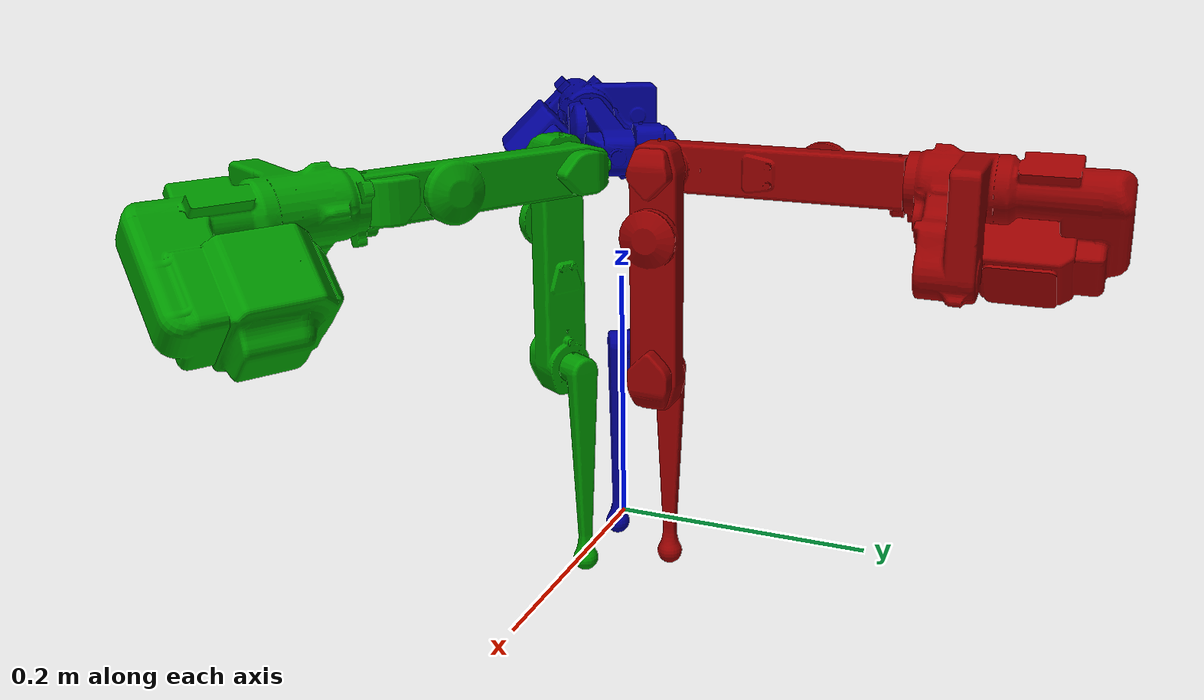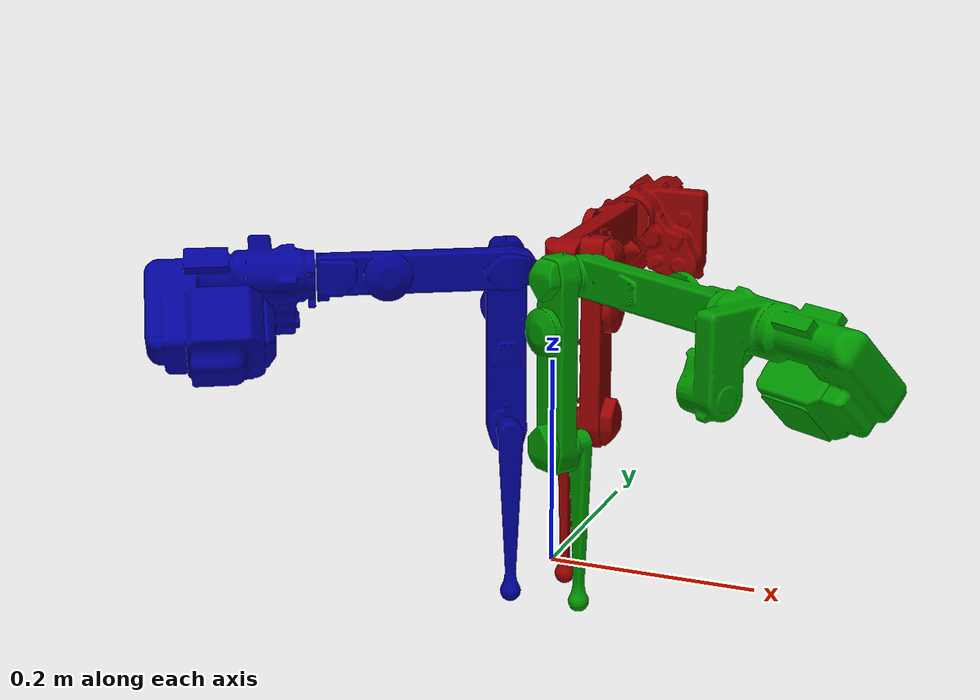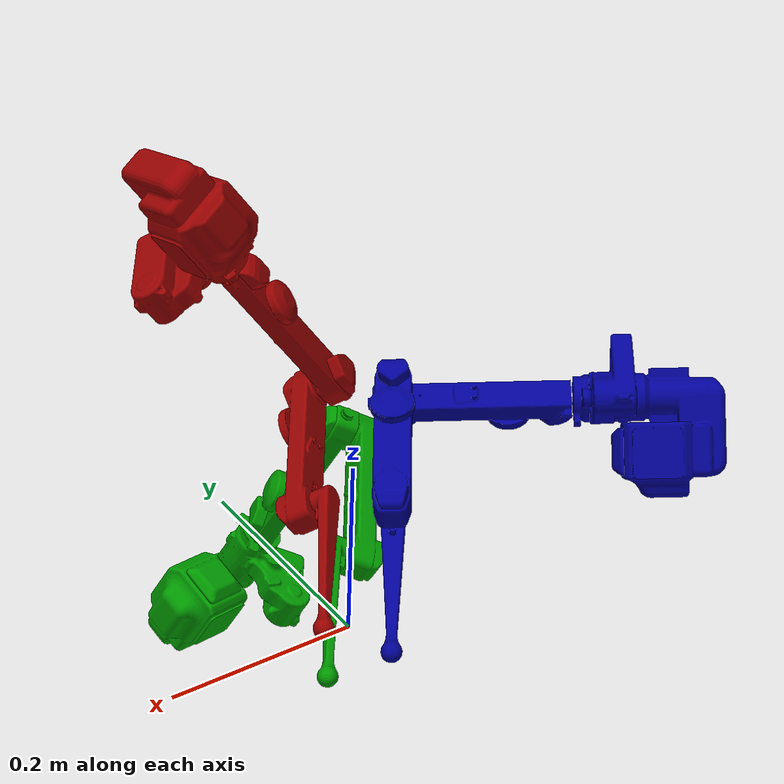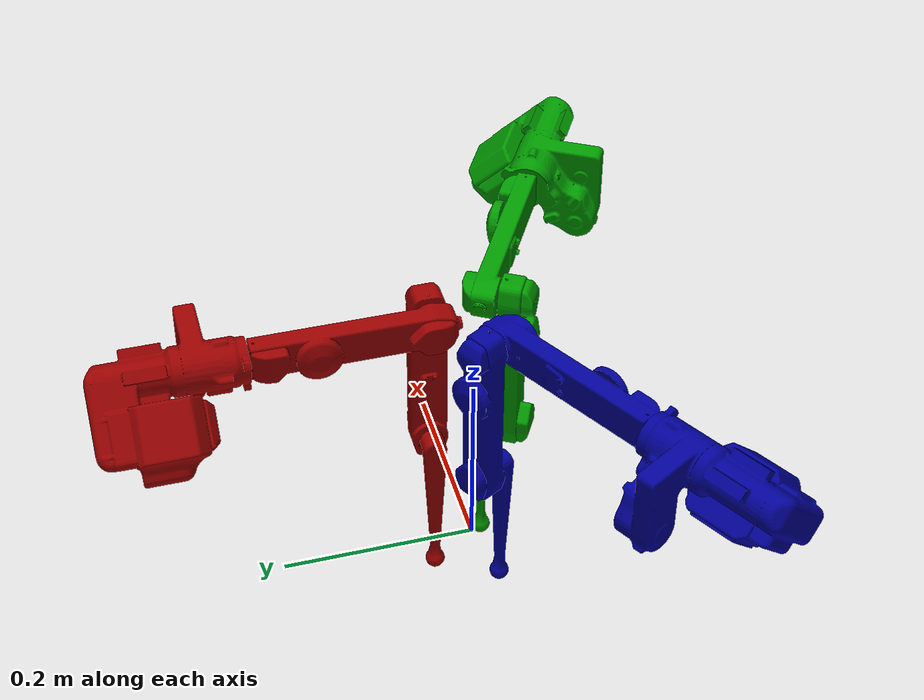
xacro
<?xml version="1.0" ?>
<robot name="finger_with_stage"
    xmlns:xacro="https://ei.is.tuebingen.mpg.de/xacro">

    <xacro:include filename="finger_macro.urdf.xacro" />
    <xacro:include filename="macros.xacro" />

    <!-- Define the global base_link and place all other objects relative to it. -->
    <link name="base_link">
        <!-- add inertial to suppress warning -->
        <xacro:add_inertia
            length_x="0.005"
            length_y="0.005"
            length_z="0.005"
            mass="1"
            com="0 0 0"/>
    </link>

    <!-- Define the upper holder -->
    <link name="upper_holder_link">
        <!-- add inertial to suppress warning -->
        <xacro:add_inertia
            length_x="0.005"
            length_y="0.005"
            length_z="0.005"
            mass="1"
            com="0 0 0"/>
    </link>
    <joint name="base_to_upper_holder_joint" type="fixed">
        <parent link="base_link"/>
        <child link="upper_holder_link"/>
        <origin xyz="0 0 0.29"/>
    </joint>

    <material name="finger_0_material">
        <color rgba="0.6 0.0 0.0 1.0" />
    </material>
    <material name="finger_120_material">
        <color rgba="0.0 0.6 0.0 1.0" />
    </material>
    <material name="finger_240_material">
        <color rgba="0.0 0.0 0.6 1.0" />
    </material>

    <!-- Define the three fingers and place them relative to the upper holder -->
    <xacro:finger suffix="_0" material="finger_0_material" />
    <xacro:finger suffix="_120" material="finger_120_material" />
    <xacro:finger suffix="_240" material="finger_240_material" />

    <xacro:property name="offset" value="0.04"/> <!-- upper_holder to finger offset -->
    <xacro:property name="angle_0" value="${radians(0)}"/>
    <xacro:property name="angle_120" value="${radians(120)}"/>
    <xacro:property name="angle_240" value="${radians(240)}"/>

    <joint name="holder_to_finger_0" type="fixed">
        <parent link="upper_holder_link"/>
        <child link="finger_base_link_0"/>
        <origin xyz="${offset * sin(angle_0)} ${offset * cos(angle_0)} 0" rpy="0 0 0"/>
    </joint>

    <joint name="holder_to_finger_120" type="fixed">
        <parent link="upper_holder_link"/>
        <child link="finger_base_link_120"/>
        <origin xyz="${offset * sin(angle_120)} ${offset * cos(angle_120)} 0" rpy="0 0 -${angle_120}"/>
    </joint>

    <joint name="holder_to_finger_240" type="fixed">
        <parent link="upper_holder_link"/>
        <child link="finger_base_link_240"/>
        <origin xyz="${offset * sin(angle_240)} ${offset * cos(angle_240)} 0" rpy="0 0 -${angle_240}"/>
    </joint>

</robot>

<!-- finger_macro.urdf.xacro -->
<robot xmlns:xacro="https://ei.is.tuebingen.mpg.de/xacro">

    <xacro:include filename="macros.xacro" />

    <!-- Meshes -->
    <xacro:property name="mesh_dir" value="package://robot_properties_fingers/meshes"/>

    <xacro:property name="upper_base_mesh" value="${mesh_dir}/SIM__BL-Finger_Base.stl"/>
    <xacro:property name="base_holder_mesh" value="${mesh_dir}/BL_Finger_Holder_SIM.stl"/>
    <xacro:property name="upper_link_mesh" value="${mesh_dir}/SIM__BL-Finger_Proximal.stl"/>
    <xacro:property name="middle_link_mesh" value="${mesh_dir}/SIM__BL-Finger_Intermediate.stl"/>
    <!-- With the round tip the lower link is closer to the one of the single finger.
         TODO: set a proper mesh matching the actual link of the TriFinger. -->
    <xacro:property name="lower_link_mesh" value="${mesh_dir}/SIM_BL_FINGER_TIP_LINK.stl"/>
    <xacro:property name="tip_padding_mesh" value="${mesh_dir}/finger_padding.stl"/>

    <!-- Distance from outer edge of the link to the joint center -->
    <xacro:property name="upper_joint_center_offset" value="0.02695" />
    <xacro:property name="upper_link_length" value="0.179" />
    <xacro:property name="middle_to_lower_joint_distance" value="0.16" />
    <xacro:property name="lower_joint_to_tip_distance" value="0.16" />
    <xacro:property name="mesh_x_offset" value="0.014" />
    <xacro:property name="centre_offset" value="0.014" />
    <xacro:property name="lower_link_mesh_scale" value="1" />
    <xacro:property name="tip_padding" value="0" /> <!-- if this flag is set to 1 (True), finger padding is added at the finger tips -->
    <xacro:property name="base_holder" value="0" /> <!-- if this flag is set to 1 (True), an upper base_holder is added -->
    <xacro:property name="tip_mass" value="0.02" />

    <xacro:macro name="finger" params="material suffix:=''">

        <!-- In case of single finger (i.e. when no suffix is passed), we change the default values of the following variables. -->
        <xacro:if value="${suffix == ''}">
            <xacro:property name="lower_link_mesh" value="${mesh_dir}/SIM_BL_FINGER_TIP_LINK.stl"/> <!-- lower_link_mesh for single finger -->
            <xacro:property name="lower_link_mesh_scale" value="1" /> <!-- not changing the scale here. Therefore, keeping the value to 1 (original scale) -->
            <xacro:property name="tip_padding" value="1" />
            <xacro:property name="base_holder" value="1" />
            <xacro:property name="tip_mass" value="0.002" />
        </xacro:if>

        <!--
        Fixed links for the finger base (parts where the upper link is mounted).
        -->
        <link name="finger_base_link${suffix}">
            <xacro:add_geometry
                rpy="0 0 0"
                xyz="0 ${upper_link_length} 0"
                mesh_file="${upper_base_mesh}"
                material="${material}" />
            <xacro:add_inertia
                length_x="0.05"
                length_y="0.05"
                length_z="0.05"
                mass="1"
                com="0 0 0"/>
        </link>
        <xacro:if value="${base_holder == 1}"> <!-- base_holder is added in case of single finger -->
            <link name="finger_upper_holder_link${suffix}">
                <xacro:add_geometry
                    rpy="0 0 0"
                    xyz="0 0 0"
                    mesh_file="${base_holder_mesh}"
                    material="${material}" />

                <!--
                  for some reason this link needs to have some inertia defined,
                  otherwise the model won't show up in gazebo
                -->

                <xacro:add_inertia
                    length_x="0.05"
                    length_y="0.05"
                    length_z="0.05"
                    mass="0.5"
                    com="0 0 0"/>
            </link>
            <joint name="finger_base_to_holder${suffix}" type="fixed">
                <parent link="finger_base_link${suffix}"/>
                <child link="finger_upper_holder_link${suffix}"/>
                <origin xyz="0 -${upper_joint_center_offset} 0" rpy="0 0 0" />
            </joint>
        </xacro:if>

        <!-- The movable links (upper, middle and lower) of the finger. -->

        <!-- TODO inertia parameters don't look correct, they cant be same for upper and middle! -->

        <link name="finger_upper_link${suffix}">
            <xacro:add_geometry
                rpy="0 0 0"
                xyz="0 -${upper_joint_center_offset} 0"
                mesh_file="${upper_link_mesh}"
                material="${material}" />
            <xacro:add_inertia
                length_x="0.04"
                length_y="0.14"
                length_z="0.04"
                mass="0.2"
                com="0 0.06 0"/>
        </link>

        <link name="finger_middle_link${suffix}">
            <xacro:add_geometry
                rpy="${pi/2} 0 0"
                xyz="${mesh_x_offset} 0 0"
                mesh_file="${middle_link_mesh}"
                material="${material}" />
            <xacro:add_inertia
                length_x="0.04"
                length_y="0.04"
                length_z="0.14"
                mass="0.2"
                com="${2 * mesh_x_offset} 0 -0.08"/>
        </link>

        <link name="finger_lower_link${suffix}">
            <xacro:add_geometry
                rpy="${pi/2} 0 0"
                xyz="${mesh_x_offset} 0 0"
                mesh_file="${lower_link_mesh}"
                mesh_scale="${lower_link_mesh_scale}"
                material="${material}" />
            <xacro:if value="${tip_padding == 1}"> <!-- tip_padding is added in case of single finger -->
                <xacro:add_geometry
                    rpy="0 0 0"
                    xyz="0 0 -${lower_joint_to_tip_distance}"
                    mesh_file="${tip_padding_mesh}"
                    material="${material}" />
            </xacro:if>
            <xacro:add_inertia
                length_x="0.02"
                length_y="0.02"
                length_z="0.14"
                mass="0.01"
                com="0 0 -0.06"/>
        </link>

        <!-- fixed link for finger tip -->
        <link name="finger_tip_link${suffix}">
            <xacro:add_inertia
                length_x="0.01"
                length_y="0.01"
                length_z="0.01"
                com="0 0 0"
                mass="${tip_mass}"/>
        </link>
        <joint name="finger_lower_to_tip_joint${suffix}" type="fixed">
            <parent link="finger_lower_link${suffix}"/>
            <child link="finger_tip_link${suffix}"/>
            <origin xyz="0 0 -${lower_joint_to_tip_distance}"/>
        </joint>

        <!-- kinematics -->

        <joint name="finger_base_to_upper_joint${suffix}" type="revolute">
            <parent link="finger_base_link${suffix}"/>
            <child link="finger_upper_link${suffix}"/>
            <limit effort="1000" lower="-${pi/2}" upper="${pi/2}" velocity="1000"/>
            <axis xyz="0 1 0"/>
            <origin rpy="0 0 0" xyz="0 0 0"/>
        </joint>

        <joint name="finger_upper_to_middle_joint${suffix}" type="revolute">
            <parent link="finger_upper_link${suffix}"/>
            <child link="finger_middle_link${suffix}"/>
            <limit effort="1000" lower="${radians(-77.5)}" upper="${radians(257.5)}" velocity="1000"/>
            <axis xyz="-1 0 0"/>
            <origin rpy="0 0 0" xyz="0 0 0"/>
        </joint>

        <joint name="finger_middle_to_lower_joint${suffix}" type="revolute">
            <parent link="finger_middle_link${suffix}"/>
            <child link="finger_lower_link${suffix}"/>
            <limit effort="1000" lower="${radians(-172)}" upper="${radians(172)}" velocity="1000"/>
            <axis xyz="1 0 0"/>
            <origin rpy="0 0 0" xyz="0 0 -${middle_to_lower_joint_distance}"/>
        </joint>

    </xacro:macro>
</robot>

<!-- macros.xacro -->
<!-- Some macros for convenience -->
<robot xmlns:xacro="https://ei.is.tuebingen.mpg.de/xacro">

    <xacro:macro name="add_geometry"
        params="rpy xyz mesh_file material mesh_scale:='1'">
        <visual>
            <origin rpy="${rpy}" xyz="${xyz}"/>
            <geometry>
                <mesh scale="${mesh_scale} ${mesh_scale} ${mesh_scale}" filename="${mesh_file}"/>
            </geometry>
            <material name="${material}" />
        </visual>
        <collision>
            <origin rpy="${rpy}" xyz="${xyz}"/>
            <geometry>
                <mesh scale="${mesh_scale} ${mesh_scale} ${mesh_scale}" filename="${mesh_file}"/>
            </geometry>
        </collision>
    </xacro:macro>

    <xacro:macro name="add_inertia" params="length_x length_y length_z mass com">
        <inertial>
            <origin rpy="0 0 0" xyz="${com}"/>
            <mass value="${mass}"/>
            <inertia
                    ixx="${1./12. * mass * (length_y*length_y + length_z*length_z)}"
                    iyy="${1./12. * mass * (length_x*length_x + length_z*length_z)}"
                    izz="${1./12. * mass * (length_x*length_x + length_y*length_y)}"
                    ixy="0" ixz="0" iyz="0"/>
        </inertial>
    </xacro:macro>

</robot>
